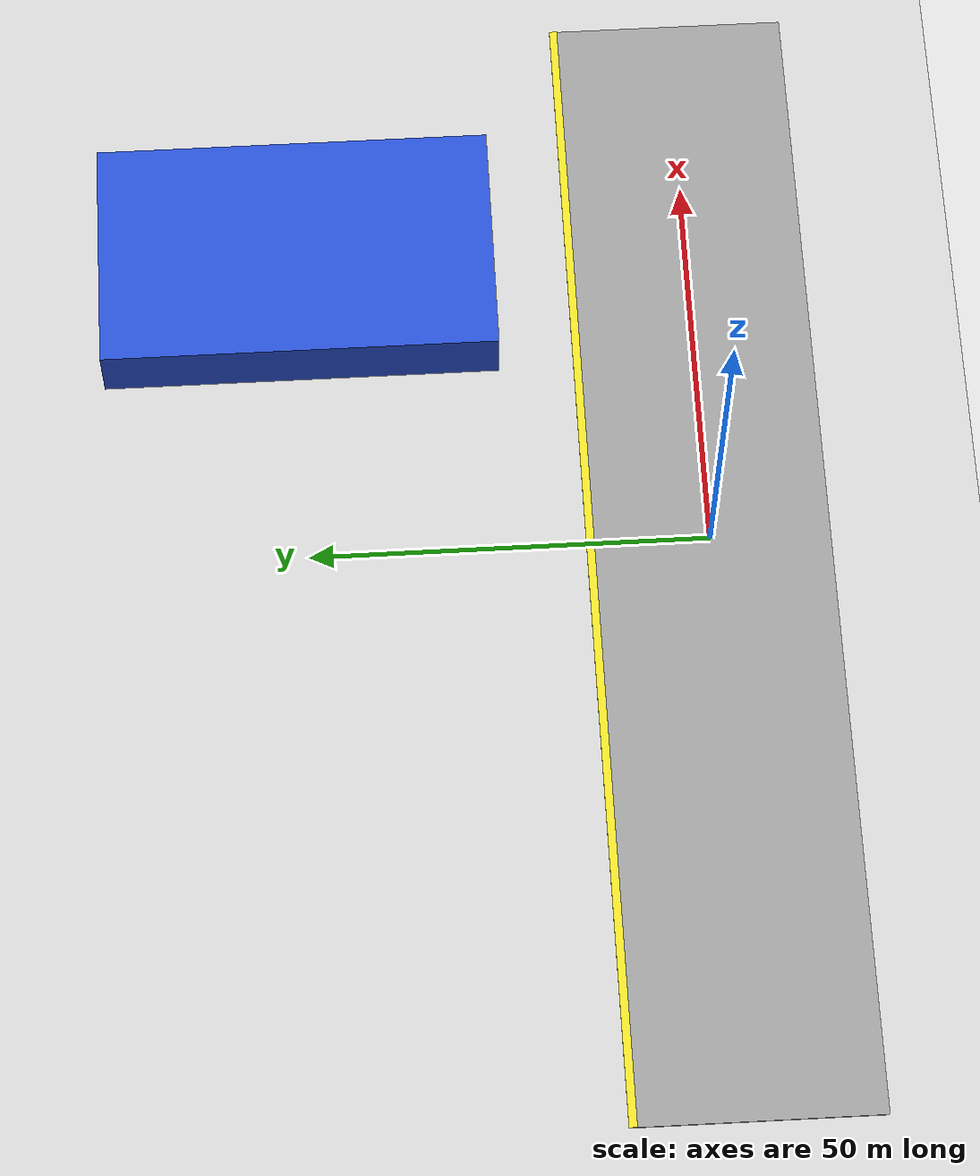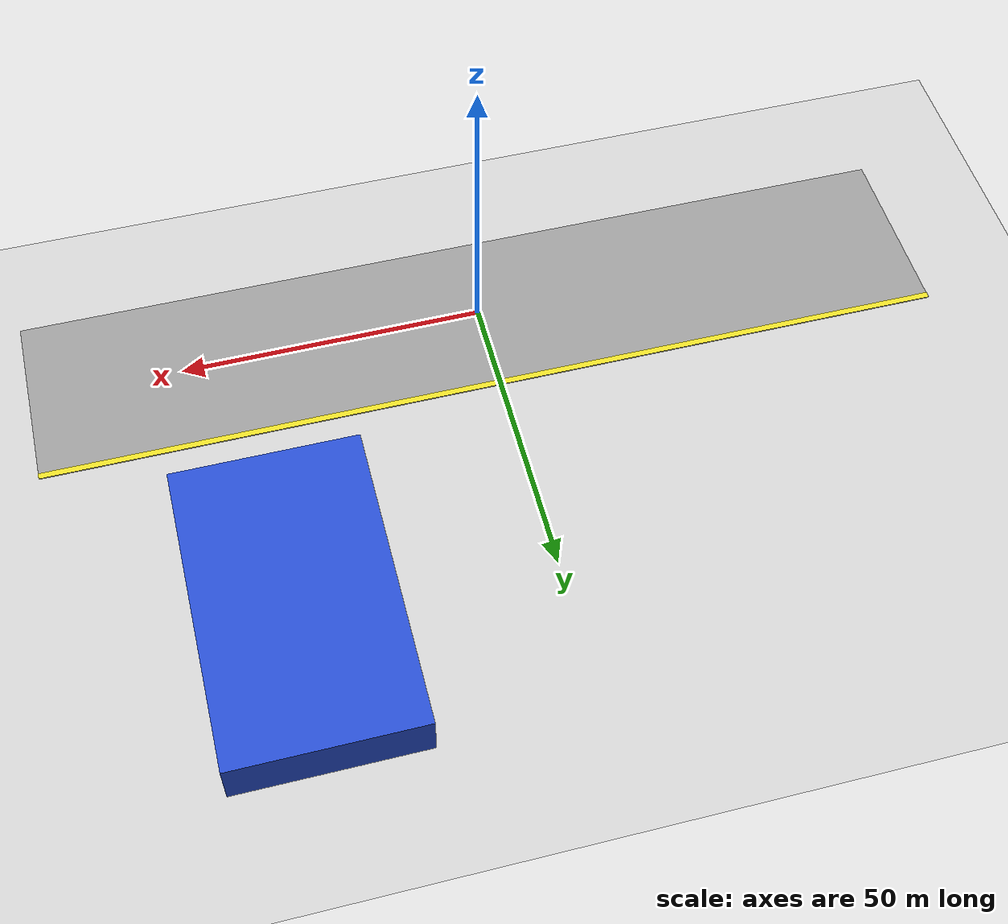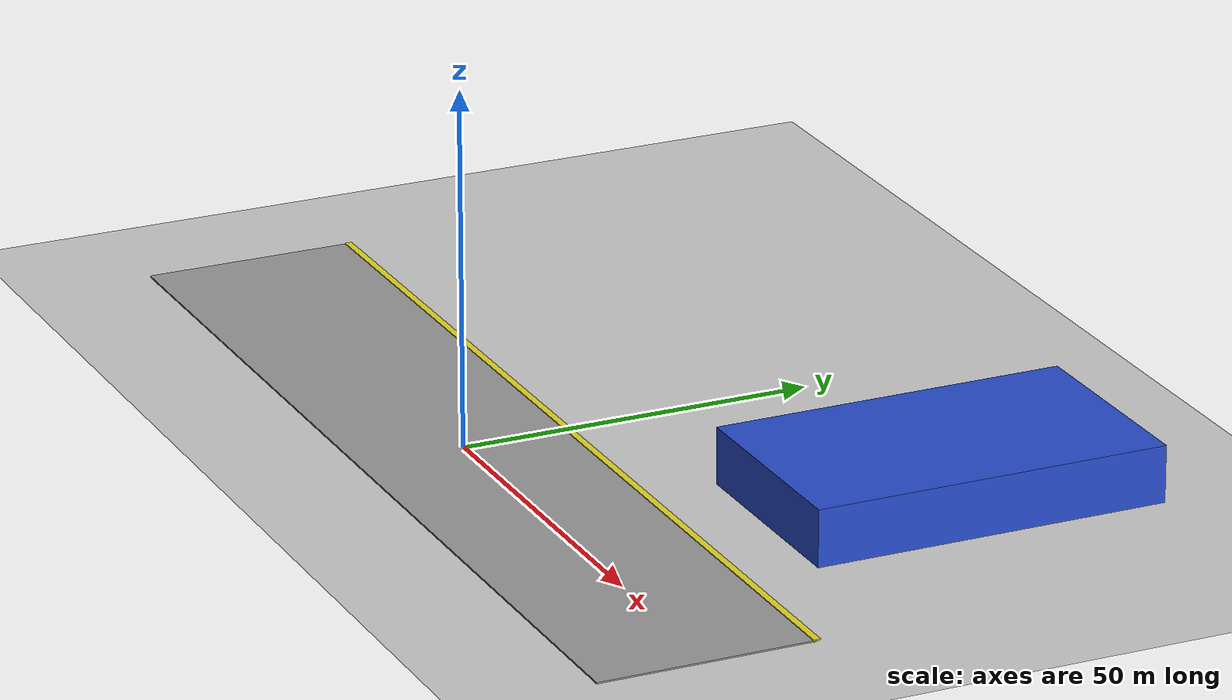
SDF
<?xml version="1.0" ?>
<sdf version="1.6">
  <world name="airport_world">
    <include>
      <uri>model://sun</uri>
    </include>
    <include>
      <uri>model://ground_plane</uri>
    </include>

    <model name="runway">
      <static>true</static>
      <pose>0 0 0 0 0 0</pose>
      <link name="body">
        <collision name="collision">
          <geometry>
            <box>
              <size>150 30 0.2</size>
            </box>
          </geometry>
        </collision>
        <visual name="visual">
          <geometry>
            <box>
              <size>150 30 0.2</size>
            </box>
          </geometry>
          <material>
            <script>
              <uri>model://gazebo/materials/scripts/gazebo.material</uri>
              <name>Gazebo/Grey</name>
            </script>
          </material>
        </visual>
      </link>
    </model>

    <model name="hangar">
      <static>true</static>
      <pose>40 50 4 0 0 0</pose>
      <link name="body">
        <collision name="collision">
          <geometry>
            <box>
              <size>30 50 8</size>
            </box>
          </geometry>
        </collision>
        <visual name="visual">
          <geometry>
            <box>
              <size>30 50 8</size>
            </box>
          </geometry>
          <material>
            <script>
              <uri>model://gazebo/materials/scripts/gazebo.material</uri>
              <name>Gazebo/Blue</name>
            </script>
          </material>
        </visual>
      </link>
    </model>

    <model name="yellow_lane">
      <static>true</static>
      <pose>0 15 0.1 0 0 0</pose>
      <link name="body">
        <collision name="collision">
          <geometry>
            <box>
              <size>150 1 0.2</size>
            </box>
          </geometry>
        </collision>
        <visual name="visual">
          <geometry>
            <box>
              <size>150 1 0.2</size>
            </box>
          </geometry>
          <material>
            <script>
              <uri>model://gazebo/materials/scripts/gazebo.material</uri>
              <name>Gazebo/Yellow</name>
            </script>
          </material>
        </visual>
      </link>
    </model>

  </world>
</sdf>
